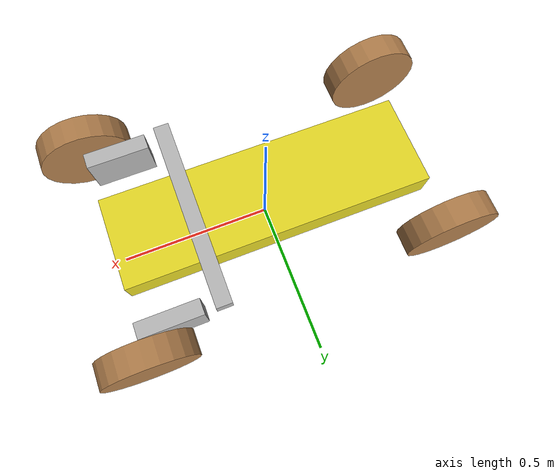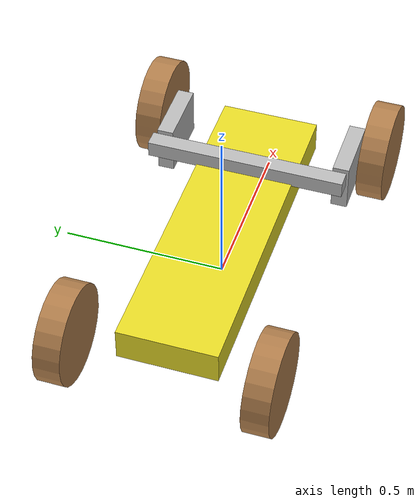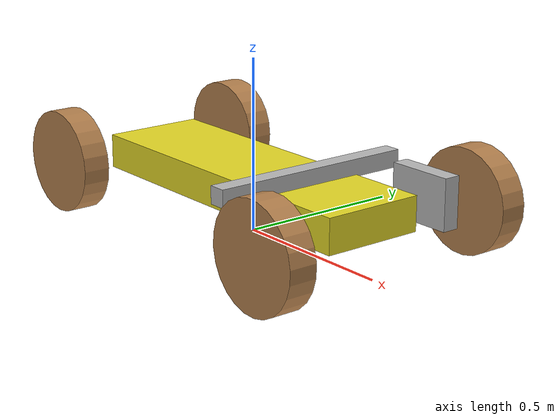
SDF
<?xml version="1.0" ?>

<sdf version="1.5">

  <model name="cart6">
    <link name="chassis">
      <pose>0 0 0.15  0 0 0</pose>
      <inertial>
        <pose>0.1 0 0  0 0 0</pose>
        <mass>10</mass>
        <inertia>
          <ixx>0.21666666666666667</ixx>
          <iyy>0.8416666666666667</iyy>
          <izz>1.0416666666666667</izz>
          <ixy>0</ixy>
          <ixz>0</ixz>
          <iyz>0</iyz>
        </inertia>
      </inertial>
      <collision name="collision">
        <geometry>
          <box>
            <size>1.0 0.3 0.1</size>
          </box>
        </geometry>
      </collision>
      <visual name="visual">
        <geometry>
          <box>
            <size>1.0 0.3 0.1</size>
          </box>
        </geometry>
        <material>
          <script>
            <uri>file://media/materials/scripts/gazebo.material</uri>
            <name>Gazebo/Yellow</name>
          </script>
        </material>
      </visual>
    </link>

    <link name="front_left_steering_head">
      <pose>0.4 0.28 0.15 0 0 0</pose>
      <inertial>
        <pose>0.4 0.28 0.15 0 0 0</pose>
        <mass>0.1</mass>
        <inertia>
          <ixx>0.00030791666666666667</ixx>
          <iyy>0.00030791666666666667</iyy>
          <izz>0.0005625</izz>
          <ixy>0</ixy>
          <ixz>0</ixz>
          <iyz>0</iyz>
        </inertia>
      </inertial>
      <collision name="collision">
        <geometry>
          <box>
            <size>0.2 0.05 0.15</size>
          </box>
        </geometry>
      </collision>
      <visual name="visual">
        <geometry>
          <box>
            <size>0.2 0.05 0.15</size>
          </box>
        </geometry>
      </visual>
    </link>

    <joint name="front_left_steer" type="revolute">
      <pose>0.1 0 0 0 0 0</pose>
      <parent>chassis</parent>
      <child>front_left_steering_head</child>
      <axis>
        <xyz>0 0 1</xyz>
        <limit>
          <lower>-0.4108652381980153</lower>
          <upper>0.4108652381980153</upper>
        </limit>
        <dynamics>
          <damping>1</damping>
          <spring_stiffness>10</spring_stiffness>
          <spring_reference>0</spring_reference>
        </dynamics>
      </axis>
    </joint>

    <link name="wheel_front_left">
      <pose>0.5 0.358 0.15  -1.5707963267948966 -0.08726646259971647 0</pose>
      <inertial>
        <mass>0.5</mass>
        <inertia>
          <ixx>0.0030791666666666667</ixx>
          <iyy>0.0030791666666666667</iyy>
          <izz>0.005625</izz>
          <ixy>0</ixy>
          <ixz>0</ixz>
          <iyz>0</iyz>
        </inertia>
      </inertial>
      <collision name="collision">
        <geometry>
          <cylinder>
            <radius>0.15</radius>
            <length>0.08</length>
          </cylinder>
        </geometry>
        <surface>
          <friction>
            <ode>
              <mu>0.8</mu>
              <mu2>0.7</mu2>
              <fdir1>0 0 0</fdir1>
		      <slip1>0.8</slip1>
		      <slip2>0.7</slip2>
            </ode>
          </friction>
        </surface>
      </collision>
      <visual name="visual">
        <geometry>
          <cylinder>
            <radius>0.15</radius>
            <length>0.08</length>
          </cylinder>
        </geometry>
        <material>
          <script>
            <uri>file://media/materials/scripts/gazebo.material</uri>
            <name>Gazebo/Wood</name>
          </script>
        </material>
      </visual>
    </link>

    <joint name="wheel_front_left_spin" type="revolute">
      <parent>front_left_steering_head</parent>
      <child>wheel_front_left</child>
      <axis>
        <xyz>0 0 1</xyz>
      </axis>
    </joint>

    <link name="front_right_steering_head">
      <pose>0.4 -0.28 0.15 0 0 0</pose>
      <inertial>
        <pose>0.4 0.28 0.15 0 0 0</pose>
        <mass>0.1</mass>
        <inertia>
          <ixx>0.00030791666666666667</ixx>
          <iyy>0.00030791666666666667</iyy>
          <izz>0.0005625</izz>
          <ixy>0</ixy>
          <ixz>0</ixz>
          <iyz>0</iyz>
        </inertia>
      </inertial>
      <collision name="collision">
        <geometry>
          <box>
            <size>0.2 0.05 0.15</size>
          </box>
        </geometry>
      </collision>
      <visual name="visual">
        <geometry>
          <box>
            <size>0.2 0.05 0.15</size>
          </box>
        </geometry>
      </visual>
    </link>

    <joint name="front_right_steer" type="revolute">
      <pose>0.1 0 0 0 0 0</pose>
      <parent>chassis</parent>
      <child>front_right_steering_head</child>
      <axis>
        <xyz>0 0 1</xyz>
        <limit>
          <lower>-0.4108652381980153</lower>
          <upper>0.4108652381980153</upper>
        </limit>
      </axis>
    </joint>

    <link name="wheel_front_right">
      <pose>0.5 -0.358 0.15  -1.5707963267948966 -0.08726646259971647 0</pose>
      <inertial>
        <mass>0.5</mass>
        <inertia>
          <ixx>0.0030791666666666667</ixx>
          <iyy>0.0030791666666666667</iyy>
          <izz>0.005625</izz>
          <ixy>0</ixy>
          <ixz>0</ixz>
          <iyz>0</iyz>
        </inertia>
      </inertial>
      <collision name="collision">
        <geometry>
          <cylinder>
            <radius>0.15</radius>
            <length>0.08</length>
          </cylinder>
        </geometry>
        <surface>
          <friction>
            <ode>
              <mu>0.8</mu>
              <mu2>0.7</mu2>
              <fdir1>0 0 0</fdir1>
		      <slip1>0.8</slip1>
		      <slip2>0.7</slip2>
            </ode>
          </friction>
        </surface>
      </collision>
      <visual name="visual">
        <geometry>
          <cylinder>
            <radius>0.15</radius>
            <length>0.08</length>
          </cylinder>
        </geometry>
        <material>
          <script>
            <uri>file://media/materials/scripts/gazebo.material</uri>
            <name>Gazebo/Wood</name>
          </script>
        </material>
      </visual>
    </link>

    <joint name="wheel_front_right_spin" type="revolute">
      <parent>front_right_steering_head</parent>
      <child>wheel_front_right</child>
      <axis>
        <xyz>0 0 1</xyz>
      </axis>
    </joint>

    <link name="steering_tie_rod">
      <pose>0.24 0 0.22 0 0 0</pose>
      <inertial>
        <pose>0.30 0 0.26 0 0 0</pose>
        <mass>0.1</mass>
        <inertia>
          <ixx>0.00030791666666666667</ixx>
          <iyy>0.00030791666666666667</iyy>
          <izz>0.0005625</izz>
          <ixy>0</ixy>
          <ixz>0</ixz>
          <iyz>0</iyz>
        </inertia>
      </inertial>
      <collision name="collision">
        <geometry>
          <box>
            <size>0.05 0.61 0.05</size>
          </box>
        </geometry>
      </collision>
      <visual name="visual">
        <geometry>
          <box>
            <size>0.05 0.61 0.05</size>
          </box>
        </geometry>
      </visual>
    </link>

    <joint name="front_right_tie_rod" type="revolute">
      <pose>-0.1 0 0 0 0 0</pose>
      <parent>steering_tie_rod</parent>
      <child>front_right_steering_head</child>
      <axis>
        <xyz>0 0 1</xyz>
      </axis>
    </joint>

    <joint name="front_left_tie_rod" type="revolute">
      <pose>-0.1 0 0 0 0 0</pose>
      <parent>steering_tie_rod</parent>
      <child>front_left_steering_head</child>
      <axis>
        <xyz>0 0 1</xyz>
      </axis>
    </joint>

    <link name="wheel_rear_left">
      <pose>-0.5 0.298 0.15  -1.5707963267948966 0 0</pose>
      <inertial>
        <mass>0.5</mass>
        <inertia>
          <ixx>0.0030791666666666667</ixx>
          <iyy>0.0030791666666666667</iyy>
          <izz>0.005625</izz>
          <ixy>0</ixy>
          <ixz>0</ixz>
          <iyz>0</iyz>
        </inertia>
      </inertial>
      <collision name="collision">
        <geometry>
          <cylinder>
            <radius>0.15</radius>
            <length>0.08</length>
          </cylinder>
        </geometry>
        <surface>
          <friction>
            <ode>
              <mu>0.8</mu>
              <mu2>0.7</mu2>
              <fdir1>0 0 0</fdir1>
		      <slip1>0.8</slip1>
		      <slip2>0.7</slip2>
            </ode>
          </friction>
        </surface>
      </collision>
      <visual name="visual">
        <geometry>
          <cylinder>
            <radius>0.15</radius>
            <length>0.08</length>
          </cylinder>
        </geometry>
        <material>
          <script>
            <uri>file://media/materials/scripts/gazebo.material</uri>
            <name>Gazebo/Wood</name>
          </script>
        </material>
      </visual>
    </link>
    <joint name="wheel_rear_left_joint" type="revolute">
      <parent>chassis</parent>
      <child>wheel_rear_left</child>
      <axis>
        <xyz>0 0 1</xyz>
      </axis>
    </joint>

    <link name="wheel_rear_right">
      <pose>-0.5 -0.298 0.15  -1.5707963267948966 0 0</pose>
      <inertial>
        <mass>0.5</mass>
        <inertia>
          <ixx>0.0030791666666666667</ixx>
          <iyy>0.0030791666666666667</iyy>
          <izz>0.005625</izz>
          <ixy>0</ixy>
          <ixz>0</ixz>
          <iyz>0</iyz>
        </inertia>
      </inertial>
      <collision name="collision">
        <geometry>
          <cylinder>
            <radius>0.15</radius>
            <length>0.08</length>
          </cylinder>
        </geometry>
        <surface>
          <friction>
            <ode>
              <mu>0.8</mu>
              <mu2>0.7</mu2>
              <fdir1>0 0 0</fdir1>
		      <slip1>0.8</slip1>
		      <slip2>0.7</slip2>
            </ode>
          </friction>
        </surface>
      </collision>
      <visual name="visual">
        <geometry>
          <cylinder>
            <radius>0.15</radius>
            <length>0.08</length>
          </cylinder>
        </geometry>
        <material>
          <script>
            <uri>file://media/materials/scripts/gazebo.material</uri>
            <name>Gazebo/Wood</name>
          </script>
        </material>
      </visual>
    </link>
    <joint name="wheel_rear_right_joint" type="revolute">
      <parent>chassis</parent>
      <child>wheel_rear_right</child>
      <axis>
        <xyz>0 0 1</xyz>
      </axis>
    </joint>

    <plugin name="drive" filename="libgazebo_ros_set_joint.so">
      <jointName>wheel_rear_right_joint</jointName>
      <topicName>chassis_force</topicName>
      <actuationMode>2</actuationMode>
      <scale>50</scale>
      <reversed_direction>0</reversed_direction>
    </plugin>

    <plugin name="drive" filename="libgazebo_ros_set_joint.so">
      <jointName>wheel_rear_left_joint</jointName>
      <topicName>chassis_force</topicName>
      <actuationMode>2</actuationMode>
      <scale>50</scale>
      <reversed_direction>0</reversed_direction>
    </plugin>

    <plugin name="steer" filename="libgazebo_ros_set_joint.so">
      <jointName>front_right_steer</jointName>
      <topicName>steer_angle</topicName>
      <actuationMode>1</actuationMode>
      <reversed_direction>0</reversed_direction>
      <scale>10</scale>
    </plugin>

  </model>

</sdf>
